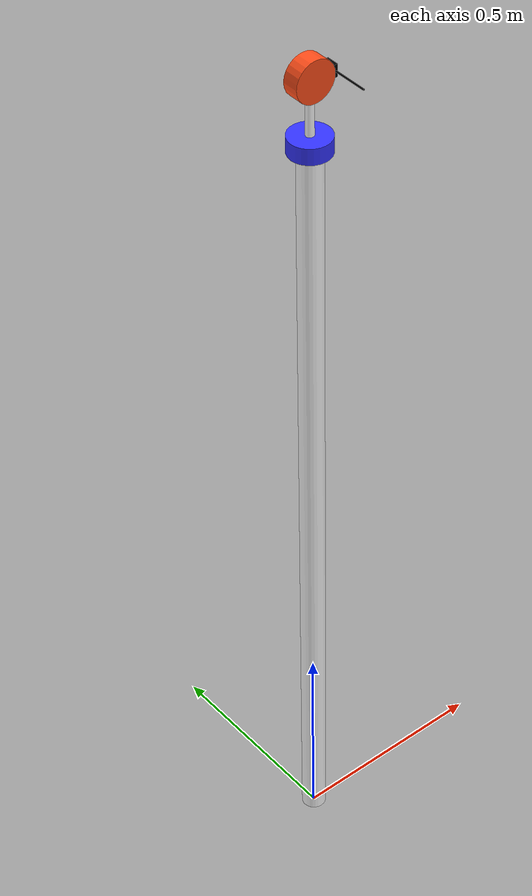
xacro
<?xml version="1.0"?>
<robot xmlns:xacro="http://www.ros.org/wiki/xacro" >

<!--Included Files-->
<xacro:include filename="inertial_macros.xacro"/>

<xacro:include filename="camera.xacro"/>

<!--Constants -->
<xacro:property name="platform_radius" value="0.05"/>
<xacro:property name="platform_length" value="0.04"/>
<xacro:property name="tilt_platform_offset" value="0.125"/>
<xacro:property name="pan_platform_offset" value="1.02"/>
<xacro:property name="tilt_mount_pole_radius" value="0.01"/>
<xacro:property name="tilt_mount_pole_offset" value="0.03"/>
<xacro:property name="tilt_mount_pole_length" value="0.1"/>
<xacro:property name="mount_pole_radius" value="0.03"/>

<!--Material Defineitions-->
<material name="white">
    <color rgba="1 1 1 1"/>
</material>

<material name="orange">
    <color rgba="1 0.3 0.1 1"/>
</material>

<material name="blue">
    <color rgba="0.2 0.2 1 1"/>
</material>

<material name="black">
    <color rgba="0 0 0 1"/>
</material>

<!-- Base link -->

<link name="base_link">
</link>

    <!-- BASE_FOOTPRINT LINK -->

    <joint name="base_footprint_joint" type="fixed">
        <parent link="base_link"/>
        <child link="base_footprint"/>
        <origin xyz="0 0 0" rpy="0 0 0"/>
    </joint>

    <link name="base_footprint">
    </link>

<!-- Mounting Pole LINK -->

    <joint name="mounting_pole_joint" type="fixed">
        <parent link="base_link"/>
        <child link="mounting_pole"/>
        <origin xyz="0 0 1"/>
    </joint>

  <link name="mounting_pole">
    <visual>
        <origin xyz = "0 0 0"/>
        <geometry>
            <cylinder length="2" radius="${mount_pole_radius}" />
        </geometry>
        <material name="white"/>
    </visual>

    <collision>
        <origin xyz ="0 0 1"/>
        <geometry>
            <cylinder length="2" radius="${mount_pole_radius}" />
        </geometry>

    </collision>

    <xacro:inertial_cylinder mass = "0.1" length="2" radius="${mount_pole_radius}">
        <origin xyz=" 0 0 -1" rpy="0 0 0"/>
    </xacro:inertial_cylinder>
</link>

<gazebo reference="mounting_pole">
    <material>Gazebo/White</material>
</gazebo>

<!-- Servo Motor Pan Platform (Bottom) -->

<joint name="pan_platform_joint" type="revolute">
    <parent link="mounting_pole"/>
    <child link="pan_platform"/>
    <origin xyz="0 0 ${pan_platform_offset}" rpy="0 0 0"/>
    <axis xyz="0 0 1"/>
   <limit lower = "0" upper ="6.28" velocity = "100" effort="100"/>
</joint>

<link name="pan_platform">
    <visual>
        <geometry>
            <cylinder length="${platform_length}" radius="${platform_radius}" />
        </geometry>
        <material name="blue"/>
    </visual>

    <collision>
        <geometry>
            <cylinder length="${platform_length}" radius="${platform_radius}" />
        </geometry>

    </collision>

    <xacro:inertial_cylinder mass = "0.1" length="${platform_length}" radius="${platform_radius}">
        <origin xyz=" 0 0 0" rpy="0 0 0"/>
    </xacro:inertial_cylinder>
</link>

<gazebo reference="pan_platform">
    <material>Gazebo/Blue</material>
</gazebo>

<!-- Tilt Mount Pole LINK -->

    <joint name="tilt_mount_pole_joint" type="fixed">
        <parent link="pan_platform"/>
        <child link="tilt_mount_pole"/>
        <origin xyz="0 0 ${tilt_mount_pole_offset}"/>
    </joint>

  <link name="tilt_mount_pole">
    <visual>
        <origin xyz = "0 0 ${tilt_mount_pole_offset}"/>
        <geometry>
            <cylinder length="${tilt_mount_pole_length}" radius="${tilt_mount_pole_radius}" />
        </geometry>
        <material name="white"/>
    </visual>

    <collision>
        <origin xyz ="0 0 ${tilt_mount_pole_offset}"/>
        <geometry>
            <cylinder length="${tilt_mount_pole_length}" radius="${tilt_mount_pole_radius}" />
        </geometry>

    </collision>

    <xacro:inertial_cylinder mass = "0.1" length="${tilt_mount_pole_length}" radius="${tilt_mount_pole_radius}">
        <origin xyz=" 0 0 ${tilt_mount_pole_offset}" rpy="0 0 0"/>
    </xacro:inertial_cylinder>
</link>

<gazebo reference="tilt_mount_pole">
    <material>Gazebo/White</material>
</gazebo>

<!-- Servo Motor Tilt Platform (Bottom) -->

<joint name="tilt_platform_joint" type="revolute">
    <parent link="tilt_mount_pole"/>
    <child link="tilt_platform"/>

    <origin xyz="0 0 ${tilt_platform_offset}" rpy="-${pi/2} 0 0"/>
    <axis xyz = "0 0 -1"/>
    <limit lower = "-0.78" upper ="1.57" velocity = "100" effort="100"/>

</joint>

<link name="tilt_platform">
    <visual>
        <geometry>
            <cylinder length="${platform_length}" radius="${platform_radius}" />
        </geometry>
        <material name="orange"/>
    </visual>

    <collision>
        <geometry>
            <cylinder length="${platform_length}" radius="${platform_radius}" />
        </geometry>
    </collision>

    <xacro:inertial_cylinder mass = "0.1" length="${platform_length}" radius="${platform_radius}">
        <origin xyz=" 0 0 0" rpy="0 0 0"/>
    </xacro:inertial_cylinder>

</link>

<gazebo reference="tilt_platform">
    <material>Gazebo/Orange</material>
</gazebo>

</robot>

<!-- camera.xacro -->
<robot xmlns:xacro="http://www.ros.org/wiki/xacro" >

<!--Constants -->
<xacro:property name="camera_offset" value="0.055"/> <!--radius + camera width/2-->
<xacro:property name="platform_length" value="0.04"/>
<xacro:property name="tilt_platform_offset" value="0.07"/>

    <joint name="camera_joint" type="fixed">
        <parent link="tilt_platform"/>
        <child link="camera_link"/>
        <origin xyz="${camera_offset} 0 0" rpy="0 0 0"/>
    </joint>

    <link name="camera_link">
        <visual>
            <geometry>
                <box size="0.010 0.03 0.03"/>
            </geometry>
            <material name="black"/>
        </visual>
        <visual>
            <origin xyz="0 0 -0.05"/>
            <geometry>
                <cylinder radius="0.002" length="0.1"/>
            </geometry>
            <material name="black"/>
        </visual>
    </link>

    <joint name="camera_optical_joint" type="fixed">
        <parent link="camera_link"/>
        <child link="camera_link_optical"/>
        <origin xyz="0 0 0" rpy="${-pi/2} 0 ${-pi/2}"/>
    </joint>

    <link name="camera_link_optical"></link>

<!--Sensor Tags-->
  <gazebo reference="camera_link">
        <material>Gazebo/Black</material>

        <sensor name="camera" type="camera">
            <pose> 0 0 0 0 0 0 </pose>
            <visualize>true</visualize>
            <update_rate>10</update_rate>
            <camera>
                <camera_info_topic>camera/camera_info</camera_info_topic>
                <horizontal_fov>1.089</horizontal_fov>
                <image>
                    <format>R8G8B8</format>
                    <width>640</width>
                    <height>480</height>
                </image>
                <clip>
                    <near>0.05</near>
                    <far>8.0</far>
                </clip>
            </camera>
            <topic>camera/image_raw</topic>
            <gz_frame_id>camera_link_optical</gz_frame_id>
        </sensor>
    </gazebo>

</robot>
